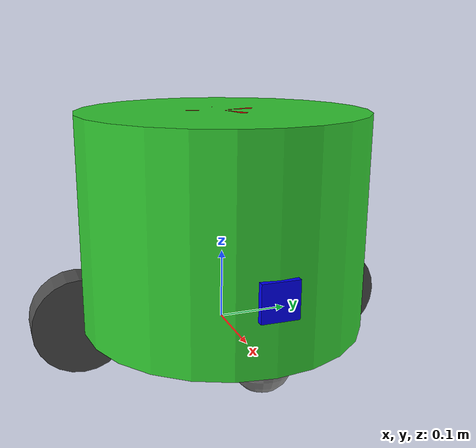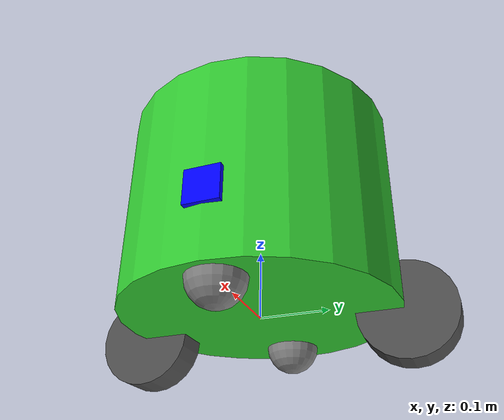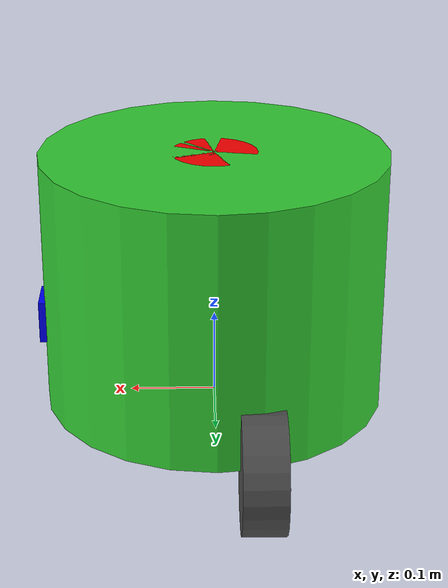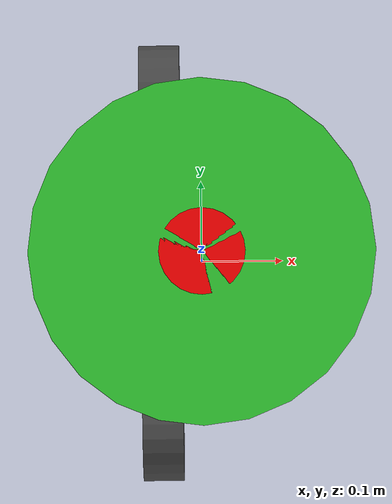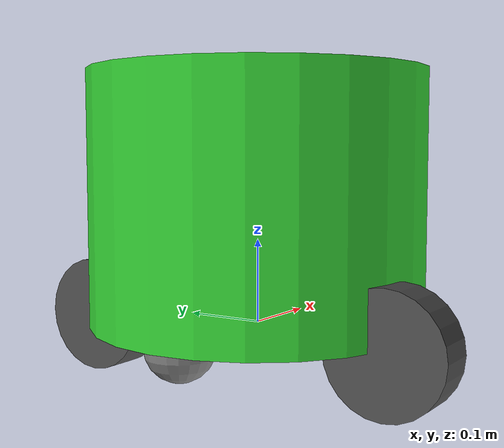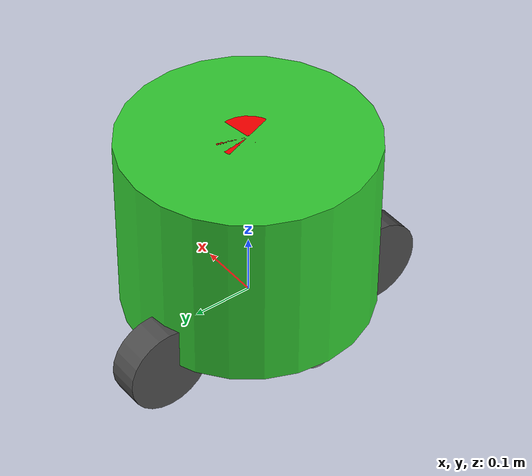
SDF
<?xml version="1.0" ?>
<sdf version="1.7">
  <model name="sensor_robot">
    <!-- Base link -->
    <link name="base_link">
      <pose>0 0 0.15 0 0 0</pose>
      <inertial>
        <mass>2.0</mass>
        <inertia>
          <ixx>0.02</ixx>
          <ixy>0</ixy>
          <ixz>0</ixz>
          <iyy>0.02</iyy>
          <iyz>0</iyz>
          <izz>0.02</izz>
        </inertia>
      </inertial>

      <collision name="collision">
        <geometry>
          <cylinder>
            <radius>0.2</radius>
            <length>0.3</length>
          </cylinder>
        </geometry>
      </collision>

      <visual name="visual">
        <geometry>
          <cylinder>
            <radius>0.2</radius>
            <length>0.3</length>
          </cylinder>
        </geometry>
        <material>
          <ambient>0.2 0.8 0.2 1</ambient>
          <diffuse>0.2 0.8 0.2 1</diffuse>
        </material>
      </visual>
    </link>

    <!-- Left wheel -->
    <link name="left_wheel">
      <pose>-0.05 0.2 0 0 1.5707 0</pose>
      <inertial>
        <mass>0.3</mass>
        <inertia>
          <ixx>0.0015</ixx>
          <ixy>0</ixy>
          <ixz>0</ixz>
          <iyy>0.0015</iyy>
          <iyz>0</iyz>
          <izz>0.0015</izz>
        </inertia>
      </inertial>

      <collision name="collision">
        <geometry>
          <cylinder>
            <radius>0.07</radius>
            <length>0.05</length>
          </cylinder>
        </geometry>
      </collision>

      <visual name="visual">
        <geometry>
          <cylinder>
            <radius>0.07</radius>
            <length>0.05</length>
          </cylinder>
        </geometry>
        <material>
          <ambient>0.3 0.3 0.3 1</ambient>
          <diffuse>0.3 0.3 0.3 1</diffuse>
        </material>
      </visual>
    </link>

    <!-- Right wheel -->
    <link name="right_wheel">
      <pose>-0.05 -0.2 0 0 1.5707 0</pose>
      <inertial>
        <mass>0.3</mass>
        <inertia>
          <ixx>0.0015</ixx>
          <ixy>0</ixy>
          <ixz>0</ixz>
          <iyy>0.0015</iyy>
          <iyz>0</iyz>
          <izz>0.0015</izz>
        </inertia>
      </inertial>

      <collision name="collision">
        <geometry>
          <cylinder>
            <radius>0.07</radius>
            <length>0.05</length>
          </cylinder>
        </geometry>
      </collision>

      <visual name="visual">
        <geometry>
          <cylinder>
            <radius>0.07</radius>
            <length>0.05</length>
          </cylinder>
        </geometry>
        <material>
          <ambient>0.3 0.3 0.3 1</ambient>
          <diffuse>0.3 0.3 0.3 1</diffuse>
        </material>
      </visual>
    </link>

    <!-- Front caster wheel -->
    <link name="front_caster">
      <pose>0.15 0 0 0 0 0</pose>
      <inertial>
        <mass>0.05</mass>
        <inertia>
          <ixx>0.0001</ixx>
          <ixy>0</ixy>
          <ixz>0</ixz>
          <iyy>0.0001</iyy>
          <iyz>0</iyz>
          <izz>0.0001</izz>
        </inertia>
      </inertial>

      <collision name="collision">
        <geometry>
          <sphere>
            <radius>0.04</radius>
          </sphere>
        </geometry>
      </collision>

      <visual name="visual">
        <geometry>
          <sphere>
            <radius>0.04</radius>
          </sphere>
        </geometry>
        <material>
          <ambient>0.5 0.5 0.5 1</ambient>
          <diffuse>0.5 0.5 0.5 1</diffuse>
        </material>
      </visual>
    </link>

    <!-- Rear caster wheel -->
    <link name="rear_caster">
      <pose>-0.15 0 0 0 0 0</pose>
      <inertial>
        <mass>0.05</mass>
        <inertia>
          <ixx>0.0001</ixx>
          <ixy>0</ixy>
          <ixz>0</ixz>
          <iyy>0.0001</iyy>
          <iyz>0</iyz>
          <izz>0.0001</izz>
        </inertia>
      </inertial>

      <collision name="collision">
        <geometry>
          <sphere>
            <radius>0.04</radius>
          </sphere>
        </geometry>
      </collision>

      <visual name="visual">
        <geometry>
          <sphere>
            <radius>0.04</radius>
          </sphere>
        </geometry>
        <material>
          <ambient>0.5 0.5 0.5 1</ambient>
          <diffuse>0.5 0.5 0.5 1</diffuse>
        </material>
      </visual>
    </link>

    <!-- Camera link -->
    <link name="camera_link">
      <pose>0.18 0 0.1 0 0 0</pose>
      <inertial>
        <mass>0.01</mass>
        <inertia>
          <ixx>1e-06</ixx>
          <ixy>0</ixy>
          <ixz>0</ixz>
          <iyy>1e-06</iyy>
          <iyz>0</iyz>
          <izz>1e-06</izz>
        </inertia>
      </inertial>

      <collision name="collision">
        <geometry>
          <box>
            <size>0.05 0.05 0.05</size>
          </box>
        </geometry>
      </collision>

      <visual name="visual">
        <geometry>
          <box>
            <size>0.05 0.05 0.05</size>
          </box>
        </geometry>
        <material>
          <ambient>0 0 1 1</ambient>
          <diffuse>0 0 1 1</diffuse>
        </material>
      </visual>
    </link>

    <!-- LiDAR link -->
    <link name="lidar_link">
      <pose>0 0 0.25 0 0 0</pose>
      <inertial>
        <mass>0.1</mass>
        <inertia>
          <ixx>0.001</ixx>
          <ixy>0</ixy>
          <ixz>0</ixz>
          <iyy>0.001</iyy>
          <iyz>0</iyz>
          <izz>0.001</izz>
        </inertia>
      </inertial>

      <collision name="collision">
        <geometry>
          <cylinder>
            <radius>0.05</radius>
            <length>0.1</length>
          </cylinder>
        </geometry>
      </collision>

      <visual name="visual">
        <geometry>
          <cylinder>
            <radius>0.05</radius>
            <length>0.1</length>
          </cylinder>
        </geometry>
        <material>
          <ambient>1 0 0 1</ambient>
          <diffuse>1 0 0 1</diffuse>
        </material>
      </visual>
    </link>

    <!-- Joints -->
    <joint name="left_wheel_joint" type="continuous">
      <parent>base_link</parent>
      <child>left_wheel</child>
      <axis>
        <xyz>0 0 1</xyz>
        <limit>
          <effort>100</effort>
          <velocity>100</velocity>
        </limit>
      </axis>
    </joint>

    <joint name="right_wheel_joint" type="continuous">
      <parent>base_link</parent>
      <child>right_wheel</child>
      <axis>
        <xyz>0 0 1</xyz>
        <limit>
          <effort>100</effort>
          <velocity>100</velocity>
        </limit>
      </axis>
    </joint>

    <joint name="front_caster_joint" type="ball">
      <parent>base_link</parent>
      <child>front_caster</child>
    </joint>

    <joint name="rear_caster_joint" type="ball">
      <parent>base_link</parent>
      <child>rear_caster</child>
    </joint>

    <joint name="camera_joint" type="fixed">
      <parent>base_link</parent>
      <child>camera_link</child>
      <pose>0.18 0 0.1 0 0 0</pose>
    </joint>

    <joint name="lidar_joint" type="fixed">
      <parent>base_link</parent>
      <child>lidar_link</child>
      <pose>0 0 0.25 0 0 0</pose>
    </joint>

    <!-- Differential drive plugin -->
    <plugin name="diff_drive" filename="libgazebo_ros_diff_drive.so">
      <left_joint>left_wheel_joint</left_joint>
      <right_joint>right_wheel_joint</right_joint>
      <wheel_separation>0.4</wheel_separation>
      <wheel_diameter>0.14</wheel_diameter>
      <max_wheel_torque>20</max_wheel_torque>
      <max_wheel_acceleration>1.0</max_wheel_acceleration>
      <command_topic>cmd_vel</command_topic>
      <odometry_topic>odom</odometry_topic>
      <odometry_frame>odom</odometry_frame>
      <robot_base_frame>base_link</robot_base_frame>
      <publish_odom>true</publish_odom>
      <publish_odom_tf>true</publish_odom_tf>
      <publish_wheel_tf>true</publish_wheel_tf>
    </plugin>

    <!-- IMU Sensor -->
    <sensor name="imu_sensor" type="imu">
      <always_on>true</always_on>
      <update_rate>100</update_rate>
      <visualize>false</visualize>
      <imu>
        <angular_velocity>
          <x>
            <noise type="gaussian">
              <mean>0.0</mean>
              <stddev>2e-4</stddev>
            </noise>
          </x>
          <y>
            <noise type="gaussian">
              <mean>0.0</mean>
              <stddev>2e-4</stddev>
            </noise>
          </y>
          <z>
            <noise type="gaussian">
              <mean>0.0</mean>
              <stddev>2e-4</stddev>
            </noise>
          </z>
        </angular_velocity>
        <linear_acceleration>
          <x>
            <noise type="gaussian">
              <mean>0.0</mean>
              <stddev>1.7e-2</stddev>
            </noise>
          </x>
          <y>
            <noise type="gaussian">
              <mean>0.0</mean>
              <stddev>1.7e-2</stddev>
            </noise>
          </y>
          <z>
            <noise type="gaussian">
              <mean>0.0</mean>
              <stddev>1.7e-2</stddev>
            </noise>
          </z>
        </linear_acceleration>
      </imu>
      <plugin name="imu_controller" filename="libgazebo_ros_imu.so">
        <topicName>imu</topicName>
        <bodyName>base_link</bodyName>
        <serviceName>imu_service</serviceName>
        <gaussianNoise>0.0017</gaussianNoise>
        <updateRate>100.0</updateRate>
      </plugin>
    </sensor>

    <!-- Camera Sensor -->
    <sensor name="camera" type="camera">
      <update_rate>30</update_rate>
      <camera name="head">
        <horizontal_fov>1.3962634</horizontal_fov>
        <image>
          <width>640</width>
          <height>480</height>
          <format>R8G8B8</format>
        </image>
        <clip>
          <near>0.02</near>
          <far>300</far>
        </clip>
        <noise>
          <type>gaussian</type>
          <mean>0.0</mean>
          <stddev>0.007</stddev>
        </noise>
      </camera>
      <plugin name="camera_controller" filename="libgazebo_ros_camera.so">
        <frame_name>camera_link</frame_name>
        <topic_name>camera/image_raw</topic_name>
      </plugin>
    </sensor>

    <!-- LiDAR Sensor -->
    <sensor name="lidar" type="ray">
      <ray>
        <scan>
          <horizontal>
            <samples>360</samples>
            <resolution>1</resolution>
            <min_angle>-3.14159</min_angle>
            <max_angle>3.14159</max_angle>
          </horizontal>
        </scan>
        <range>
          <min>0.1</min>
          <max>30.0</max>
          <resolution>0.01</resolution>
        </range>
        <noise>
          <type>gaussian</type>
          <mean>0.0</mean>
          <stddev>0.01</stddev>
        </noise>
      </ray>
      <plugin name="lidar_controller" filename="libgazebo_ros_ray_sensor.so">
        <topic_name>scan</topic_name>
        <frame_name>lidar_link</frame_name>
      </plugin>
    </sensor>

    <!-- Sonar Sensor -->
    <sensor name="sonar_front" type="ray">
      <pose>0.2 0 0.1 0 0 0</pose>
      <ray>
        <scan>
          <horizontal>
            <samples>1</samples>
            <resolution>1</resolution>
            <min_angle>0</min_angle>
            <max_angle>0</max_angle>
          </horizontal>
        </scan>
        <range>
          <min>0.05</min>
          <max>4.0</max>
          <resolution>0.01</resolution>
        </range>
        <noise>
          <type>gaussian</type>
          <mean>0.0</mean>
          <stddev>0.02</stddev>
        </noise>
      </ray>
      <plugin name="sonar_controller" filename="libgazebo_ros_ray_sensor.so">
        <topic_name>sonar/front</topic_name>
        <frame_name>base_link</frame_name>
      </plugin>
    </sensor>
  </model>
</sdf>
